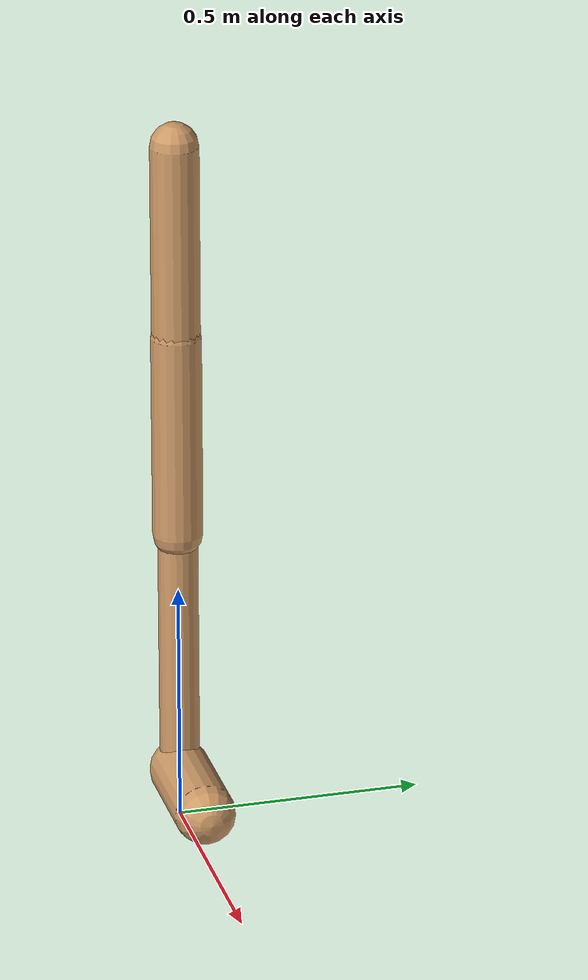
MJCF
<mujoco model="walker2d">
  <compiler angle="degree" coordinate="global" inertiafromgeom="true" />
  <default>
    <joint armature="0.01" damping=".1" limited="true" />
    <geom conaffinity="0" condim="3" contype="1" density="1000" friction="0.8 .1 .1" rgba="0.8 0.6 .4 1" />
  </default>
  <option integrator="RK4" timestep="0.002" />
  <worldbody>

    <body name="torso" pos="0 0 -0.055008452921129734">
      <joint armature="0" axis="1 0 0" damping="0" limited="false" name="ignorex" pos="0 0 0" stiffness="0" type="slide" />
      <joint armature="0" axis="0 0 1" damping="0" limited="false" name="ignorez" pos="0 0 0" ref="1.25" stiffness="0" type="slide" />
      <joint armature="0" axis="0 1 0" damping="0" limited="false" name="ignorey" pos="0 0 0" stiffness="0" type="hinge" />
      <geom fromto="0 0 1.45 0 0 1.05" name="torso_geom" size="0.04878946233649617" type="capsule" />
      <body name="thigh">
        <joint axis="0 -1 0" name="thigh_joint" pos="0 0 1.05" range="-150 0" type="hinge" />
        <geom fromto="0.0 0.0 1.05 0.0 0.0 0.6260566355942193" name="thigh_geom" size="0.0507193814597315" type="capsule" />
        <body name="leg" pos="0.0 0.0 0.026056635594219335">
          <joint axis="0 -1 0" name="leg_joint" pos="0 0 0.6" range="-150 0" type="hinge" />
          <geom fromto="0.0 0.0 0.6 0.0 0.0 0.12895181732691038" name="leg_geom" size="0.04057550516778519" type="capsule" />
          <body name="foot" pos="0.0 0.0 0.02895181732691038">
            <joint axis="0 -1 0" name="foot_joint" pos="0 0 0.1" range="-45 45" type="hinge" />
            <geom fromto="-0.0 0.0 0.10000000000000002 0.2097713663084536 0.0 0.10000000000000002" name="foot_geom" size="0.06186317419693911" type="capsule" />
          </body>
        </body>
      </body>

      <body name="thigh_left">
        <joint axis="0 -1 0" name="thigh_left_joint" pos="0 0 1.05" range="-150 0" type="hinge" />
        <geom fromto="0.0 0.0 1.05 0.0 0.0 0.6260566355942193" name="thigh_left_geom" rgba=".7 .3 .6 1" size="0.0507193814597315" type="capsule" />
        <body name="leg_left" pos="0.0 0.0 0.026056635594219335">
          <joint axis="0 -1 0" name="leg_left_joint" pos="0 0 0.6" range="-150 0" type="hinge" />
          <geom fromto="0.0 0.0 0.6 0.0 0.0 0.12895181732691038" name="leg_left_geom" rgba=".7 .3 .6 1" size="0.04057550516778519" type="capsule" />
          <body name="foot_left" pos="0.0 0.0 0.02895181732691038">
            <joint axis="0 -1 0" name="foot_left_joint" pos="0 0 0.1" range="-45 45" type="hinge" />
            <geom fromto="-0.0 0.0 0.10000000000000002 0.2097713663084536 0.0 0.10000000000000002" name="foot_left_geom" rgba=".7 .3 .6 1" size="0.06186317419693911" type="capsule" />
          </body>
        </body>
      </body>
    </body>
  </worldbody>
  <actuator>

    <motor ctrllimited="true" ctrlrange="-1.0 1.0" gear="100" joint="thigh_joint" />
    <motor ctrllimited="true" ctrlrange="-1.0 1.0" gear="100" joint="leg_joint" />
    <motor ctrllimited="true" ctrlrange="-1.0 1.0" gear="100" joint="foot_joint" />
    <motor ctrllimited="true" ctrlrange="-1.0 1.0" gear="100" joint="thigh_left_joint" />
    <motor ctrllimited="true" ctrlrange="-1.0 1.0" gear="100" joint="leg_left_joint" />
    <motor ctrllimited="true" ctrlrange="-1.0 1.0" gear="100" joint="foot_left_joint" />

  </actuator>
</mujoco>
